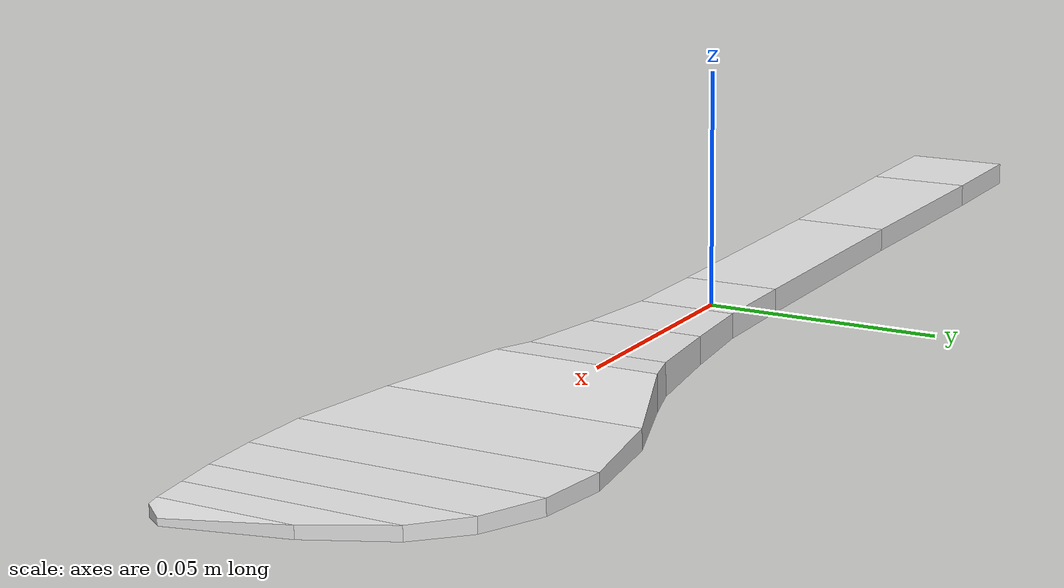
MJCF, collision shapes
<mujoco model="wooden_spoon_2">
    <compiler angle="radian" meshdir="../meshes/" texturedir="../textures/" autolimits="true" inertiafromgeom="false"/>
    <asset>
        <mesh name="WoodenSpoon2" file="obj/WoodenSpoon2.obj" />
        <mesh name="UCX_WoodenSpoon2_001" file="stl/UCX_WoodenSpoon2_001.stl" />
		<mesh name="UCX_WoodenSpoon2_002" file="stl/UCX_WoodenSpoon2_002.stl" />
		<mesh name="UCX_WoodenSpoon2_003" file="stl/UCX_WoodenSpoon2_003.stl" />
		<mesh name="UCX_WoodenSpoon2_004" file="stl/UCX_WoodenSpoon2_004.stl" />
		<mesh name="UCX_WoodenSpoon2_005" file="stl/UCX_WoodenSpoon2_005.stl" />
		<mesh name="UCX_WoodenSpoon2_006" file="stl/UCX_WoodenSpoon2_006.stl" />
		<mesh name="UCX_WoodenSpoon2_007" file="stl/UCX_WoodenSpoon2_007.stl" />
		<mesh name="UCX_WoodenSpoon2_008" file="stl/UCX_WoodenSpoon2_008.stl" />
		<mesh name="UCX_WoodenSpoon2_009" file="stl/UCX_WoodenSpoon2_009.stl" />
		<mesh name="UCX_WoodenSpoon2_010" file="stl/UCX_WoodenSpoon2_010.stl" />
		<mesh name="UCX_WoodenSpoon2_011" file="stl/UCX_WoodenSpoon2_011.stl" />
		<mesh name="UCX_WoodenSpoon2_012" file="stl/UCX_WoodenSpoon2_012.stl" />
		<mesh name="UCX_WoodenSpoon2_013" file="stl/UCX_WoodenSpoon2_013.stl" />
		<mesh name="UCX_WoodenSpoon2_014" file="stl/UCX_WoodenSpoon2_014.stl" />
    </asset>
    <default>
        <default class="wooden_spoon_2_visual">
            <geom contype="0" conaffinity="0" />
        </default>
        <default class="wooden_spoon_2_collision">
            <geom rgba="0.9 0.9 0.9 0.0" />
        </default>
    </default>
    <worldbody>
        <body name="wooden_spoon_2">
            <freejoint />
            <inertial mass="0.04049776494503021" pos="0.014492795802652836 -0.00037787394830957055 9.596227528163581e-07" quat="0.9999949932098389 -5.905303260078654e-05 -8.249860002251808e-06 -0.0031695899087935686" diaginertia="4.832420927414205e-06 0.0002983893791679293 0.00030306470580399036"/>
            <geom name="WoodenSpoon2" pos="0.0 0.0 0.0" quat="1.0 0.0 0.0 0.0" type="mesh" mesh="WoodenSpoon2" class="wooden_spoon_2_visual" />
            <geom name="UCX_WoodenSpoon2_001" type="mesh" pos="0.0 0.0 0.0" quat="1.0 0.0 0.0 0.0" mesh="UCX_WoodenSpoon2_001" class="wooden_spoon_2_collision"/>
            <geom name="UCX_WoodenSpoon2_002" type="mesh" pos="0.0 0.0 0.0" quat="1.0 0.0 0.0 0.0" mesh="UCX_WoodenSpoon2_002" class="wooden_spoon_2_collision"/>
            <geom name="UCX_WoodenSpoon2_003" type="mesh" pos="0.0 0.0 0.0" quat="1.0 0.0 0.0 0.0" mesh="UCX_WoodenSpoon2_003" class="wooden_spoon_2_collision"/>
            <geom name="UCX_WoodenSpoon2_004" type="mesh" pos="0.0 0.0 0.0" quat="1.0 0.0 0.0 0.0" mesh="UCX_WoodenSpoon2_004" class="wooden_spoon_2_collision"/>
            <geom name="UCX_WoodenSpoon2_005" type="mesh" pos="0.0 0.0 0.0" quat="1.0 0.0 0.0 0.0" mesh="UCX_WoodenSpoon2_005" class="wooden_spoon_2_collision"/>
            <geom name="UCX_WoodenSpoon2_006" type="mesh" pos="0.0 0.0 0.0" quat="1.0 0.0 0.0 0.0" mesh="UCX_WoodenSpoon2_006" class="wooden_spoon_2_collision"/>
            <geom name="UCX_WoodenSpoon2_007" type="mesh" pos="0.0 0.0 0.0" quat="1.0 0.0 0.0 0.0" mesh="UCX_WoodenSpoon2_007" class="wooden_spoon_2_collision"/>
            <geom name="UCX_WoodenSpoon2_008" type="mesh" pos="0.0 0.0 0.0" quat="1.0 0.0 0.0 0.0" mesh="UCX_WoodenSpoon2_008" class="wooden_spoon_2_collision"/>
            <geom name="UCX_WoodenSpoon2_009" type="mesh" pos="0.0 0.0 0.0" quat="1.0 0.0 0.0 0.0" mesh="UCX_WoodenSpoon2_009" class="wooden_spoon_2_collision"/>
            <geom name="UCX_WoodenSpoon2_010" type="mesh" pos="0.0 0.0 0.0" quat="1.0 0.0 0.0 0.0" mesh="UCX_WoodenSpoon2_010" class="wooden_spoon_2_collision"/>
            <geom name="UCX_WoodenSpoon2_011" type="mesh" pos="0.0 0.0 0.0" quat="1.0 0.0 0.0 0.0" mesh="UCX_WoodenSpoon2_011" class="wooden_spoon_2_collision"/>
            <geom name="UCX_WoodenSpoon2_012" type="mesh" pos="0.0 0.0 0.0" quat="1.0 0.0 0.0 0.0" mesh="UCX_WoodenSpoon2_012" class="wooden_spoon_2_collision"/>
            <geom name="UCX_WoodenSpoon2_013" type="mesh" pos="0.0 0.0 0.0" quat="1.0 0.0 0.0 0.0" mesh="UCX_WoodenSpoon2_013" class="wooden_spoon_2_collision"/>
            <geom name="UCX_WoodenSpoon2_014" type="mesh" pos="0.0 0.0 0.0" quat="1.0 0.0 0.0 0.0" mesh="UCX_WoodenSpoon2_014" class="wooden_spoon_2_collision"/>
        </body>
    </worldbody>
    <equality />
    <contact />
</mujoco>
